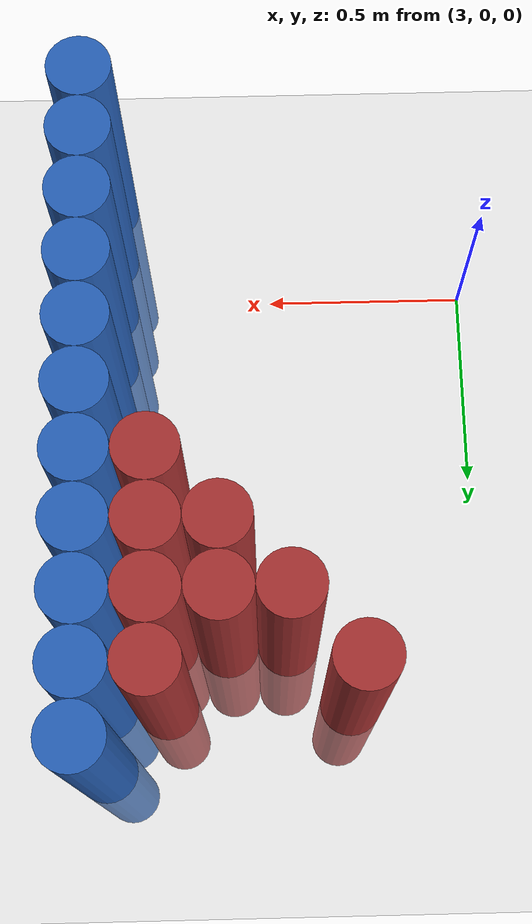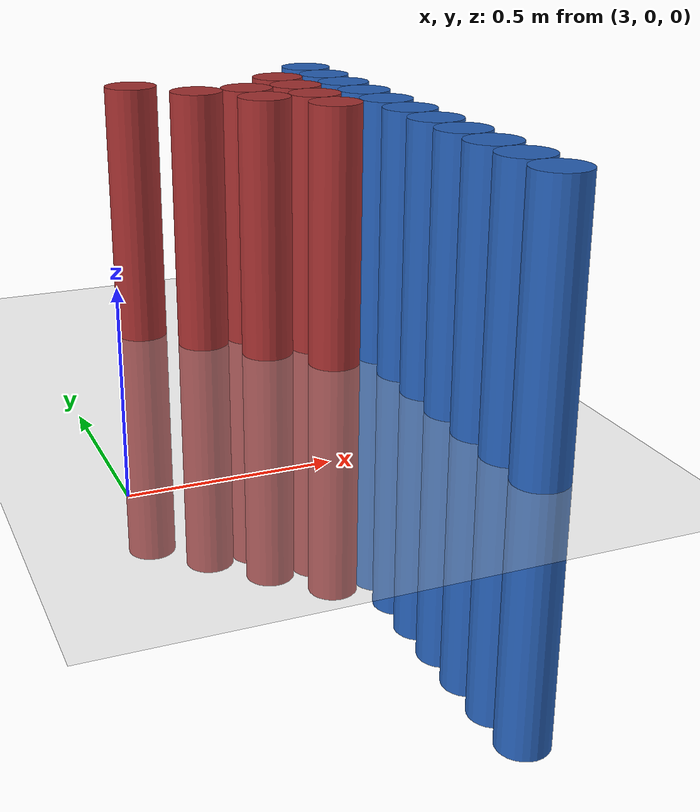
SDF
<sdf version="1.6">
 <world name="default">
  <model name="ground_plane">
   <static>1</static>
   <link name="link">
    <collision name="collision">
     <geometry><plane><normal>0 0 1</normal><size>100 100</size></plane></geometry>
     <surface><friction><ode><mu>100</mu><mu2>50</mu2></ode></friction></surface>
    </collision>
    <visual name="visual">
     <cast_shadows>0</cast_shadows>
     <geometry><plane><normal>0 0 1</normal><size>100 100</size></plane></geometry>
     <material>
      <script><uri>file://media/materials/scripts/gazebo.material</uri><name>Gazebo/Grey</name></script>
     </material>
    </visual>
   </link>
  </model>
  <model name="unit_cylinder_112">
   <static>1</static>
   <pose>3.925000 -0.125000 0.000000 0.000000 0.000000 0.000000</pose>
   <link name="link">
    <inertial>
     <mass>1</mass>
     <inertia><ixx>0.145833</ixx><ixy>0</ixy><ixz>0</ixz><iyy>0.145833</iyy><iyz>0</iyz><izz>0.125</izz></inertia>
    </inertial>
    <collision name="collision">
     <geometry><cylinder><radius>0.075000</radius><length>1.5</length></cylinder></geometry>
    </collision>
    <visual name="visual">
     <geometry><cylinder><radius>0.075000</radius><length>1.5</length></cylinder></geometry>
     <material>
      <ambient>0.152000 0.379000 0.720000 1</ambient>
      <diffuse>0.152000 0.379000 0.720000 1</diffuse>
     </material>
     <material>
      <script><name>Gazebo/Grey</name><uri>file://media/materials/scripts/gazebo.material</uri></script>
     </material>
    </visual>
   </link>
  </model>
  <model name="unit_cylinder_114">
   <static>1</static>
   <pose>3.925000 0.025000 0.000000 0.000000 0.000000 0.000000</pose>
   <link name="link">
    <inertial>
     <mass>1</mass>
     <inertia><ixx>0.145833</ixx><ixy>0</ixy><ixz>0</ixz><iyy>0.145833</iyy><iyz>0</iyz><izz>0.125</izz></inertia>
    </inertial>
    <collision name="collision">
     <geometry><cylinder><radius>0.075000</radius><length>1.5</length></cylinder></geometry>
    </collision>
    <visual name="visual">
     <geometry><cylinder><radius>0.075000</radius><length>1.5</length></cylinder></geometry>
     <material>
      <ambient>0.152000 0.379000 0.720000 1</ambient>
      <diffuse>0.152000 0.379000 0.720000 1</diffuse>
     </material>
     <material>
      <script><name>Gazebo/Grey</name><uri>file://media/materials/scripts/gazebo.material</uri></script>
     </material>
    </visual>
   </link>
  </model>
  <model name="unit_cylinder_116">
   <static>1</static>
   <pose>3.925000 0.175000 0.000000 0.000000 0.000000 0.000000</pose>
   <link name="link">
    <inertial>
     <mass>1</mass>
     <inertia><ixx>0.145833</ixx><ixy>0</ixy><ixz>0</ixz><iyy>0.145833</iyy><iyz>0</iyz><izz>0.125</izz></inertia>
    </inertial>
    <collision name="collision">
     <geometry><cylinder><radius>0.075000</radius><length>1.5</length></cylinder></geometry>
    </collision>
    <visual name="visual">
     <geometry><cylinder><radius>0.075000</radius><length>1.5</length></cylinder></geometry>
     <material>
      <ambient>0.152000 0.379000 0.720000 1</ambient>
      <diffuse>0.152000 0.379000 0.720000 1</diffuse>
     </material>
     <material>
      <script><name>Gazebo/Grey</name><uri>file://media/materials/scripts/gazebo.material</uri></script>
     </material>
    </visual>
   </link>
  </model>
  <model name="unit_cylinder_118">
   <static>1</static>
   <pose>3.925000 0.325000 0.000000 0.000000 0.000000 0.000000</pose>
   <link name="link">
    <inertial>
     <mass>1</mass>
     <inertia><ixx>0.145833</ixx><ixy>0</ixy><ixz>0</ixz><iyy>0.145833</iyy><iyz>0</iyz><izz>0.125</izz></inertia>
    </inertial>
    <collision name="collision">
     <geometry><cylinder><radius>0.075000</radius><length>1.5</length></cylinder></geometry>
    </collision>
    <visual name="visual">
     <geometry><cylinder><radius>0.075000</radius><length>1.5</length></cylinder></geometry>
     <material>
      <ambient>0.152000 0.379000 0.720000 1</ambient>
      <diffuse>0.152000 0.379000 0.720000 1</diffuse>
     </material>
     <material>
      <script><name>Gazebo/Grey</name><uri>file://media/materials/scripts/gazebo.material</uri></script>
     </material>
    </visual>
   </link>
  </model>
  <model name="unit_cylinder_120">
   <static>1</static>
   <pose>3.925000 0.475000 0.000000 0.000000 0.000000 0.000000</pose>
   <link name="link">
    <inertial>
     <mass>1</mass>
     <inertia><ixx>0.145833</ixx><ixy>0</ixy><ixz>0</ixz><iyy>0.145833</iyy><iyz>0</iyz><izz>0.125</izz></inertia>
    </inertial>
    <collision name="collision">
     <geometry><cylinder><radius>0.075000</radius><length>1.5</length></cylinder></geometry>
    </collision>
    <visual name="visual">
     <geometry><cylinder><radius>0.075000</radius><length>1.5</length></cylinder></geometry>
     <material>
      <ambient>0.152000 0.379000 0.720000 1</ambient>
      <diffuse>0.152000 0.379000 0.720000 1</diffuse>
     </material>
     <material>
      <script><name>Gazebo/Grey</name><uri>file://media/materials/scripts/gazebo.material</uri></script>
     </material>
    </visual>
   </link>
  </model>
  <model name="unit_cylinder_122">
   <static>1</static>
   <pose>3.925000 0.625000 0.000000 0.000000 0.000000 0.000000</pose>
   <link name="link">
    <inertial>
     <mass>1</mass>
     <inertia><ixx>0.145833</ixx><ixy>0</ixy><ixz>0</ixz><iyy>0.145833</iyy><iyz>0</iyz><izz>0.125</izz></inertia>
    </inertial>
    <collision name="collision">
     <geometry><cylinder><radius>0.075000</radius><length>1.5</length></cylinder></geometry>
    </collision>
    <visual name="visual">
     <geometry><cylinder><radius>0.075000</radius><length>1.5</length></cylinder></geometry>
     <material>
      <ambient>0.152000 0.379000 0.720000 1</ambient>
      <diffuse>0.152000 0.379000 0.720000 1</diffuse>
     </material>
     <material>
      <script><name>Gazebo/Grey</name><uri>file://media/materials/scripts/gazebo.material</uri></script>
     </material>
    </visual>
   </link>
  </model>
  <model name="unit_cylinder_124">
   <static>1</static>
   <pose>3.925000 0.775000 0.000000 0.000000 0.000000 0.000000</pose>
   <link name="link">
    <inertial>
     <mass>1</mass>
     <inertia><ixx>0.145833</ixx><ixy>0</ixy><ixz>0</ixz><iyy>0.145833</iyy><iyz>0</iyz><izz>0.125</izz></inertia>
    </inertial>
    <collision name="collision">
     <geometry><cylinder><radius>0.075000</radius><length>1.5</length></cylinder></geometry>
    </collision>
    <visual name="visual">
     <geometry><cylinder><radius>0.075000</radius><length>1.5</length></cylinder></geometry>
     <material>
      <ambient>0.152000 0.379000 0.720000 1</ambient>
      <diffuse>0.152000 0.379000 0.720000 1</diffuse>
     </material>
     <material>
      <script><name>Gazebo/Grey</name><uri>file://media/materials/scripts/gazebo.material</uri></script>
     </material>
    </visual>
   </link>
  </model>
  <model name="unit_cylinder_126">
   <static>1</static>
   <pose>3.925000 0.925000 0.000000 0.000000 0.000000 0.000000</pose>
   <link name="link">
    <inertial>
     <mass>1</mass>
     <inertia><ixx>0.145833</ixx><ixy>0</ixy><ixz>0</ixz><iyy>0.145833</iyy><iyz>0</iyz><izz>0.125</izz></inertia>
    </inertial>
    <collision name="collision">
     <geometry><cylinder><radius>0.075000</radius><length>1.5</length></cylinder></geometry>
    </collision>
    <visual name="visual">
     <geometry><cylinder><radius>0.075000</radius><length>1.5</length></cylinder></geometry>
     <material>
      <ambient>0.152000 0.379000 0.720000 1</ambient>
      <diffuse>0.152000 0.379000 0.720000 1</diffuse>
     </material>
     <material>
      <script><name>Gazebo/Grey</name><uri>file://media/materials/scripts/gazebo.material</uri></script>
     </material>
    </visual>
   </link>
  </model>
  <model name="unit_cylinder_128">
   <static>1</static>
   <pose>3.925000 1.075000 0.000000 0.000000 0.000000 0.000000</pose>
   <link name="link">
    <inertial>
     <mass>1</mass>
     <inertia><ixx>0.145833</ixx><ixy>0</ixy><ixz>0</ixz><iyy>0.145833</iyy><iyz>0</iyz><izz>0.125</izz></inertia>
    </inertial>
    <collision name="collision">
     <geometry><cylinder><radius>0.075000</radius><length>1.5</length></cylinder></geometry>
    </collision>
    <visual name="visual">
     <geometry><cylinder><radius>0.075000</radius><length>1.5</length></cylinder></geometry>
     <material>
      <ambient>0.152000 0.379000 0.720000 1</ambient>
      <diffuse>0.152000 0.379000 0.720000 1</diffuse>
     </material>
     <material>
      <script><name>Gazebo/Grey</name><uri>file://media/materials/scripts/gazebo.material</uri></script>
     </material>
    </visual>
   </link>
  </model>
  <model name="unit_cylinder_130">
   <static>1</static>
   <pose>3.925000 1.225000 0.000000 0.000000 0.000000 0.000000</pose>
   <link name="link">
    <inertial>
     <mass>1</mass>
     <inertia><ixx>0.145833</ixx><ixy>0</ixy><ixz>0</ixz><iyy>0.145833</iyy><iyz>0</iyz><izz>0.125</izz></inertia>
    </inertial>
    <collision name="collision">
     <geometry><cylinder><radius>0.075000</radius><length>1.5</length></cylinder></geometry>
    </collision>
    <visual name="visual">
     <geometry><cylinder><radius>0.075000</radius><length>1.5</length></cylinder></geometry>
     <material>
      <ambient>0.152000 0.379000 0.720000 1</ambient>
      <diffuse>0.152000 0.379000 0.720000 1</diffuse>
     </material>
     <material>
      <script><name>Gazebo/Grey</name><uri>file://media/materials/scripts/gazebo.material</uri></script>
     </material>
    </visual>
   </link>
  </model>
  <model name="unit_cylinder_453">
   <static>1</static>
   <pose>3.325000 1.075000 0.000000 0.000000 0.000000 0.000000</pose>
   <link name="link">
    <inertial>
     <mass>1</mass>
     <inertia><ixx>0.145833</ixx><ixy>0</ixy><ixz>0</ixz><iyy>0.145833</iyy><iyz>0</iyz><izz>0.125</izz></inertia>
    </inertial>
    <collision name="collision">
     <geometry><cylinder><radius>0.075000</radius><length>1.5</length></cylinder></geometry>
    </collision>
    <visual name="visual">
     <geometry><cylinder><radius>0.075000</radius><length>1.5</length></cylinder></geometry>
     <material>
      <ambient>0.648000 0.192000 0.192000 1</ambient>
      <diffuse>0.648000 0.192000 0.192000 1</diffuse>
     </material>
     <material>
      <script><name>Gazebo/Grey</name><uri>file://media/materials/scripts/gazebo.material</uri></script>
     </material>
    </visual>
   </link>
  </model>
  <model name="unit_cylinder_460">
   <static>1</static>
   <pose>3.475000 0.925000 0.000000 0.000000 0.000000 0.000000</pose>
   <link name="link">
    <inertial>
     <mass>1</mass>
     <inertia><ixx>0.145833</ixx><ixy>0</ixy><ixz>0</ixz><iyy>0.145833</iyy><iyz>0</iyz><izz>0.125</izz></inertia>
    </inertial>
    <collision name="collision">
     <geometry><cylinder><radius>0.075000</radius><length>1.5</length></cylinder></geometry>
    </collision>
    <visual name="visual">
     <geometry><cylinder><radius>0.075000</radius><length>1.5</length></cylinder></geometry>
     <material>
      <ambient>0.648000 0.192000 0.192000 1</ambient>
      <diffuse>0.648000 0.192000 0.192000 1</diffuse>
     </material>
     <material>
      <script><name>Gazebo/Grey</name><uri>file://media/materials/scripts/gazebo.material</uri></script>
     </material>
    </visual>
   </link>
  </model>
  <model name="unit_cylinder_466">
   <static>1</static>
   <pose>3.625000 0.775000 0.000000 0.000000 0.000000 0.000000</pose>
   <link name="link">
    <inertial>
     <mass>1</mass>
     <inertia><ixx>0.145833</ixx><ixy>0</ixy><ixz>0</ixz><iyy>0.145833</iyy><iyz>0</iyz><izz>0.125</izz></inertia>
    </inertial>
    <collision name="collision">
     <geometry><cylinder><radius>0.075000</radius><length>1.5</length></cylinder></geometry>
    </collision>
    <visual name="visual">
     <geometry><cylinder><radius>0.075000</radius><length>1.5</length></cylinder></geometry>
     <material>
      <ambient>0.648000 0.192000 0.192000 1</ambient>
      <diffuse>0.648000 0.192000 0.192000 1</diffuse>
     </material>
     <material>
      <script><name>Gazebo/Grey</name><uri>file://media/materials/scripts/gazebo.material</uri></script>
     </material>
    </visual>
   </link>
  </model>
  <model name="unit_cylinder_467">
   <static>1</static>
   <pose>3.625000 0.925000 0.000000 0.000000 0.000000 0.000000</pose>
   <link name="link">
    <inertial>
     <mass>1</mass>
     <inertia><ixx>0.145833</ixx><ixy>0</ixy><ixz>0</ixz><iyy>0.145833</iyy><iyz>0</iyz><izz>0.125</izz></inertia>
    </inertial>
    <collision name="collision">
     <geometry><cylinder><radius>0.075000</radius><length>1.5</length></cylinder></geometry>
    </collision>
    <visual name="visual">
     <geometry><cylinder><radius>0.075000</radius><length>1.5</length></cylinder></geometry>
     <material>
      <ambient>0.648000 0.192000 0.192000 1</ambient>
      <diffuse>0.648000 0.192000 0.192000 1</diffuse>
     </material>
     <material>
      <script><name>Gazebo/Grey</name><uri>file://media/materials/scripts/gazebo.material</uri></script>
     </material>
    </visual>
   </link>
  </model>
  <model name="unit_cylinder_478">
   <static>1</static>
   <pose>3.775000 0.625000 0.000000 0.000000 0.000000 0.000000</pose>
   <link name="link">
    <inertial>
     <mass>1</mass>
     <inertia><ixx>0.145833</ixx><ixy>0</ixy><ixz>0</ixz><iyy>0.145833</iyy><iyz>0</iyz><izz>0.125</izz></inertia>
    </inertial>
    <collision name="collision">
     <geometry><cylinder><radius>0.075000</radius><length>1.5</length></cylinder></geometry>
    </collision>
    <visual name="visual">
     <geometry><cylinder><radius>0.075000</radius><length>1.5</length></cylinder></geometry>
     <material>
      <ambient>0.648000 0.192000 0.192000 1</ambient>
      <diffuse>0.648000 0.192000 0.192000 1</diffuse>
     </material>
     <material>
      <script><name>Gazebo/Grey</name><uri>file://media/materials/scripts/gazebo.material</uri></script>
     </material>
    </visual>
   </link>
  </model>
  <model name="unit_cylinder_479">
   <static>1</static>
   <pose>3.775000 0.775000 0.000000 0.000000 0.000000 0.000000</pose>
   <link name="link">
    <inertial>
     <mass>1</mass>
     <inertia><ixx>0.145833</ixx><ixy>0</ixy><ixz>0</ixz><iyy>0.145833</iyy><iyz>0</iyz><izz>0.125</izz></inertia>
    </inertial>
    <collision name="collision">
     <geometry><cylinder><radius>0.075000</radius><length>1.5</length></cylinder></geometry>
    </collision>
    <visual name="visual">
     <geometry><cylinder><radius>0.075000</radius><length>1.5</length></cylinder></geometry>
     <material>
      <ambient>0.648000 0.192000 0.192000 1</ambient>
      <diffuse>0.648000 0.192000 0.192000 1</diffuse>
     </material>
     <material>
      <script><name>Gazebo/Grey</name><uri>file://media/materials/scripts/gazebo.material</uri></script>
     </material>
    </visual>
   </link>
  </model>
  <model name="unit_cylinder_480">
   <static>1</static>
   <pose>3.775000 0.925000 0.000000 0.000000 0.000000 0.000000</pose>
   <link name="link">
    <inertial>
     <mass>1</mass>
     <inertia><ixx>0.145833</ixx><ixy>0</ixy><ixz>0</ixz><iyy>0.145833</iyy><iyz>0</iyz><izz>0.125</izz></inertia>
    </inertial>
    <collision name="collision">
     <geometry><cylinder><radius>0.075000</radius><length>1.5</length></cylinder></geometry>
    </collision>
    <visual name="visual">
     <geometry><cylinder><radius>0.075000</radius><length>1.5</length></cylinder></geometry>
     <material>
      <ambient>0.648000 0.192000 0.192000 1</ambient>
      <diffuse>0.648000 0.192000 0.192000 1</diffuse>
     </material>
     <material>
      <script><name>Gazebo/Grey</name><uri>file://media/materials/scripts/gazebo.material</uri></script>
     </material>
    </visual>
   </link>
  </model>
  <model name="unit_cylinder_481">
   <static>1</static>
   <pose>3.775000 1.075000 0.000000 0.000000 0.000000 0.000000</pose>
   <link name="link">
    <inertial>
     <mass>1</mass>
     <inertia><ixx>0.145833</ixx><ixy>0</ixy><ixz>0</ixz><iyy>0.145833</iyy><iyz>0</iyz><izz>0.125</izz></inertia>
    </inertial>
    <collision name="collision">
     <geometry><cylinder><radius>0.075000</radius><length>1.5</length></cylinder></geometry>
    </collision>
    <visual name="visual">
     <geometry><cylinder><radius>0.075000</radius><length>1.5</length></cylinder></geometry>
     <material>
      <ambient>0.648000 0.192000 0.192000 1</ambient>
      <diffuse>0.648000 0.192000 0.192000 1</diffuse>
     </material>
     <material>
      <script><name>Gazebo/Grey</name><uri>file://media/materials/scripts/gazebo.material</uri></script>
     </material>
    </visual>
   </link>
  </model>
  <model name="unit_cylinder_505">
   <static>1</static>
   <pose>3.925000 -0.275000 0.000000 0.000000 0.000000 0.000000</pose>
   <link name="link">
    <inertial>
     <mass>1</mass>
     <inertia><ixx>0.145833</ixx><ixy>0</ixy><ixz>0</ixz><iyy>0.145833</iyy><iyz>0</iyz><izz>0.125</izz></inertia>
    </inertial>
    <collision name="collision">
     <geometry><cylinder><radius>0.075000</radius><length>1.5</length></cylinder></geometry>
    </collision>
    <visual name="visual">
     <geometry><cylinder><radius>0.075000</radius><length>1.5</length></cylinder></geometry>
     <material>
      <ambient>0.152000 0.379000 0.720000 1</ambient>
      <diffuse>0.152000 0.379000 0.720000 1</diffuse>
     </material>
     <material>
      <script><name>Gazebo/Grey</name><uri>file://media/materials/scripts/gazebo.material</uri></script>
     </material>
    </visual>
   </link>
  </model>
  <model name="unit_cylinder_506">
   <static>1</static>
   <pose>3.925000 -0.125000 0.000000 0.000000 0.000000 0.000000</pose>
   <link name="link">
    <inertial>
     <mass>1</mass>
     <inertia><ixx>0.145833</ixx><ixy>0</ixy><ixz>0</ixz><iyy>0.145833</iyy><iyz>0</iyz><izz>0.125</izz></inertia>
    </inertial>
    <collision name="collision">
     <geometry><cylinder><radius>0.075000</radius><length>1.5</length></cylinder></geometry>
    </collision>
    <visual name="visual">
     <geometry><cylinder><radius>0.075000</radius><length>1.5</length></cylinder></geometry>
     <material>
      <ambient>0.152000 0.379000 0.720000 1</ambient>
      <diffuse>0.152000 0.379000 0.720000 1</diffuse>
     </material>
     <material>
      <script><name>Gazebo/Grey</name><uri>file://media/materials/scripts/gazebo.material</uri></script>
     </material>
    </visual>
   </link>
  </model>
  <model name="unit_cylinder_507">
   <static>1</static>
   <pose>3.925000 0.025000 0.000000 0.000000 0.000000 0.000000</pose>
   <link name="link">
    <inertial>
     <mass>1</mass>
     <inertia><ixx>0.145833</ixx><ixy>0</ixy><ixz>0</ixz><iyy>0.145833</iyy><iyz>0</iyz><izz>0.125</izz></inertia>
    </inertial>
    <collision name="collision">
     <geometry><cylinder><radius>0.075000</radius><length>1.5</length></cylinder></geometry>
    </collision>
    <visual name="visual">
     <geometry><cylinder><radius>0.075000</radius><length>1.5</length></cylinder></geometry>
     <material>
      <ambient>0.152000 0.379000 0.720000 1</ambient>
      <diffuse>0.152000 0.379000 0.720000 1</diffuse>
     </material>
     <material>
      <script><name>Gazebo/Grey</name><uri>file://media/materials/scripts/gazebo.material</uri></script>
     </material>
    </visual>
   </link>
  </model>
  <model name="unit_cylinder_508">
   <static>1</static>
   <pose>3.925000 0.175000 0.000000 0.000000 0.000000 0.000000</pose>
   <link name="link">
    <inertial>
     <mass>1</mass>
     <inertia><ixx>0.145833</ixx><ixy>0</ixy><ixz>0</ixz><iyy>0.145833</iyy><iyz>0</iyz><izz>0.125</izz></inertia>
    </inertial>
    <collision name="collision">
     <geometry><cylinder><radius>0.075000</radius><length>1.5</length></cylinder></geometry>
    </collision>
    <visual name="visual">
     <geometry><cylinder><radius>0.075000</radius><length>1.5</length></cylinder></geometry>
     <material>
      <ambient>0.152000 0.379000 0.720000 1</ambient>
      <diffuse>0.152000 0.379000 0.720000 1</diffuse>
     </material>
     <material>
      <script><name>Gazebo/Grey</name><uri>file://media/materials/scripts/gazebo.material</uri></script>
     </material>
    </visual>
   </link>
  </model>
  <model name="unit_cylinder_509">
   <static>1</static>
   <pose>3.925000 0.325000 0.000000 0.000000 0.000000 0.000000</pose>
   <link name="link">
    <inertial>
     <mass>1</mass>
     <inertia><ixx>0.145833</ixx><ixy>0</ixy><ixz>0</ixz><iyy>0.145833</iyy><iyz>0</iyz><izz>0.125</izz></inertia>
    </inertial>
    <collision name="collision">
     <geometry><cylinder><radius>0.075000</radius><length>1.5</length></cylinder></geometry>
    </collision>
    <visual name="visual">
     <geometry><cylinder><radius>0.075000</radius><length>1.5</length></cylinder></geometry>
     <material>
      <ambient>0.152000 0.379000 0.720000 1</ambient>
      <diffuse>0.152000 0.379000 0.720000 1</diffuse>
     </material>
     <material>
      <script><name>Gazebo/Grey</name><uri>file://media/materials/scripts/gazebo.material</uri></script>
     </material>
    </visual>
   </link>
  </model>
  <model name="unit_cylinder_510">
   <static>1</static>
   <pose>3.925000 0.475000 0.000000 0.000000 0.000000 0.000000</pose>
   <link name="link">
    <inertial>
     <mass>1</mass>
     <inertia><ixx>0.145833</ixx><ixy>0</ixy><ixz>0</ixz><iyy>0.145833</iyy><iyz>0</iyz><izz>0.125</izz></inertia>
    </inertial>
    <collision name="collision">
     <geometry><cylinder><radius>0.075000</radius><length>1.5</length></cylinder></geometry>
    </collision>
    <visual name="visual">
     <geometry><cylinder><radius>0.075000</radius><length>1.5</length></cylinder></geometry>
     <material>
      <ambient>0.152000 0.379000 0.720000 1</ambient>
      <diffuse>0.152000 0.379000 0.720000 1</diffuse>
     </material>
     <material>
      <script><name>Gazebo/Grey</name><uri>file://media/materials/scripts/gazebo.material</uri></script>
     </material>
    </visual>
   </link>
  </model>
  <model name="unit_cylinder_511">
   <static>1</static>
   <pose>3.925000 0.625000 0.000000 0.000000 0.000000 0.000000</pose>
   <link name="link">
    <inertial>
     <mass>1</mass>
     <inertia><ixx>0.145833</ixx><ixy>0</ixy><ixz>0</ixz><iyy>0.145833</iyy><iyz>0</iyz><izz>0.125</izz></inertia>
    </inertial>
    <collision name="collision">
     <geometry><cylinder><radius>0.075000</radius><length>1.5</length></cylinder></geometry>
    </collision>
    <visual name="visual">
     <geometry><cylinder><radius>0.075000</radius><length>1.5</length></cylinder></geometry>
     <material>
      <ambient>0.152000 0.379000 0.720000 1</ambient>
      <diffuse>0.152000 0.379000 0.720000 1</diffuse>
     </material>
     <material>
      <script><name>Gazebo/Grey</name><uri>file://media/materials/scripts/gazebo.material</uri></script>
     </material>
    </visual>
   </link>
  </model>
  <model name="unit_cylinder_512">
   <static>1</static>
   <pose>3.925000 0.775000 0.000000 0.000000 0.000000 0.000000</pose>
   <link name="link">
    <inertial>
     <mass>1</mass>
     <inertia><ixx>0.145833</ixx><ixy>0</ixy><ixz>0</ixz><iyy>0.145833</iyy><iyz>0</iyz><izz>0.125</izz></inertia>
    </inertial>
    <collision name="collision">
     <geometry><cylinder><radius>0.075000</radius><length>1.5</length></cylinder></geometry>
    </collision>
    <visual name="visual">
     <geometry><cylinder><radius>0.075000</radius><length>1.5</length></cylinder></geometry>
     <material>
      <ambient>0.152000 0.379000 0.720000 1</ambient>
      <diffuse>0.152000 0.379000 0.720000 1</diffuse>
     </material>
     <material>
      <script><name>Gazebo/Grey</name><uri>file://media/materials/scripts/gazebo.material</uri></script>
     </material>
    </visual>
   </link>
  </model>
  <model name="unit_cylinder_513">
   <static>1</static>
   <pose>3.925000 0.925000 0.000000 0.000000 0.000000 0.000000</pose>
   <link name="link">
    <inertial>
     <mass>1</mass>
     <inertia><ixx>0.145833</ixx><ixy>0</ixy><ixz>0</ixz><iyy>0.145833</iyy><iyz>0</iyz><izz>0.125</izz></inertia>
    </inertial>
    <collision name="collision">
     <geometry><cylinder><radius>0.075000</radius><length>1.5</length></cylinder></geometry>
    </collision>
    <visual name="visual">
     <geometry><cylinder><radius>0.075000</radius><length>1.5</length></cylinder></geometry>
     <material>
      <ambient>0.152000 0.379000 0.720000 1</ambient>
      <diffuse>0.152000 0.379000 0.720000 1</diffuse>
     </material>
     <material>
      <script><name>Gazebo/Grey</name><uri>file://media/materials/scripts/gazebo.material</uri></script>
     </material>
    </visual>
   </link>
  </model>
  <model name="unit_cylinder_514">
   <static>1</static>
   <pose>3.925000 1.075000 0.000000 0.000000 0.000000 0.000000</pose>
   <link name="link">
    <inertial>
     <mass>1</mass>
     <inertia><ixx>0.145833</ixx><ixy>0</ixy><ixz>0</ixz><iyy>0.145833</iyy><iyz>0</iyz><izz>0.125</izz></inertia>
    </inertial>
    <collision name="collision">
     <geometry><cylinder><radius>0.075000</radius><length>1.5</length></cylinder></geometry>
    </collision>
    <visual name="visual">
     <geometry><cylinder><radius>0.075000</radius><length>1.5</length></cylinder></geometry>
     <material>
      <ambient>0.152000 0.379000 0.720000 1</ambient>
      <diffuse>0.152000 0.379000 0.720000 1</diffuse>
     </material>
     <material>
      <script><name>Gazebo/Grey</name><uri>file://media/materials/scripts/gazebo.material</uri></script>
     </material>
    </visual>
   </link>
  </model>
 </world>
</sdf>
